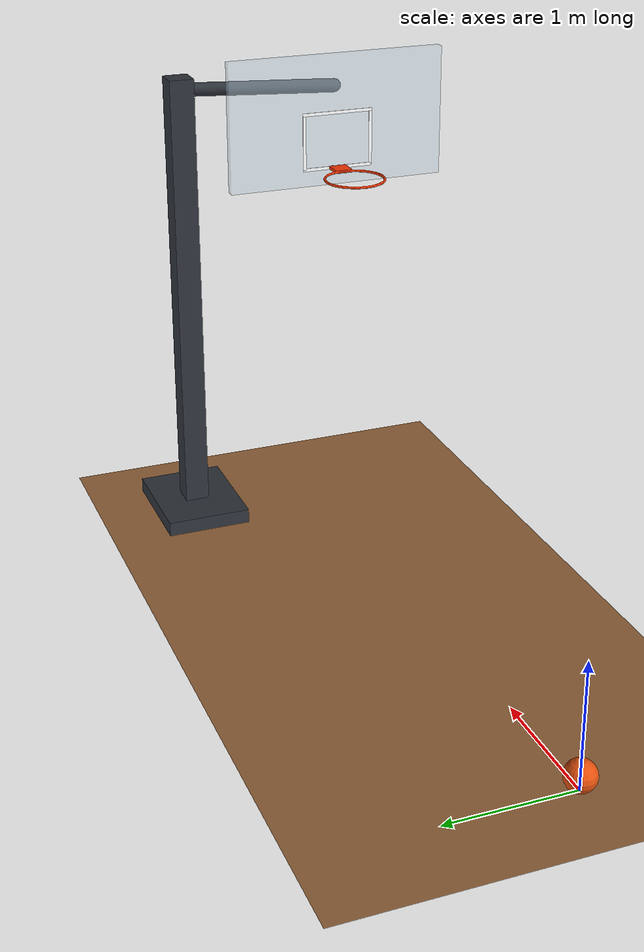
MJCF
<mujoco model="basketball_floor_launch">
  <compiler angle="degree"/>
  <option timestep="0.002" gravity="0 0 -9.81" integrator="Euler" solver="Newton" iterations="50"/>
  <statistic center="2 0 2" extent="6"/>
  <visual>
    <global offwidth="1280" offheight="720"/>
    <headlight ambient="0.3 0.3 0.3" diffuse="0.6 0.6 0.6" specular="0.2 0.2 0.2"/>
  </visual>

  <worldbody>
    <light name="court_light" pos="2 -3 8" dir="0 0 -1" diffuse="0.8 0.8 0.8"/>
    <camera name="overview" pos="2 -9 4.5" xyaxes="1 0 0 0 0.2169 0.9762" fovy="48"/>
    <geom name="floor" type="plane" pos="0 0 0" size="10 8 0.1" rgba="0.58 0.39 0.23 1" friction="0.7 0.005 0.0001"/>

    <!-- Size-7 basketball: 0.754 m circumference, 0.624 kg, hollow-shell inertia. -->
    <body name="ball" pos="0 0 0.12">
      <freejoint name="ball_free"/>
      <inertial pos="0 0 0" mass="0.624" diaginertia="0.0059904 0.0059904 0.0059904"/>
      <geom name="ball" type="sphere" size="0.12" rgba="0.9 0.32 0.055 1" friction="0.7 0.005 0.0001" solref="0.012 0.8" solimp="0.9 0.95 0.001"/>
    </body>

    <!-- Rim center is 4 m from launch and 3.05 m above the floor.
         Tube radius 0.0095 m; nominal inside diameter 0.4572 m. -->
    <body name="hoop" pos="4 0 3.05">
      <geom name="rim_00" type="capsule" fromto="0.238100 0 0 0.233525 0.046451 0" size="0.0095" rgba="1 0.22 0.025 1"/>
      <geom name="rim_01" type="capsule" fromto="0.233525 0.046451 0 0.219976 0.091117 0" size="0.0095" rgba="1 0.22 0.025 1"/>
      <geom name="rim_02" type="capsule" fromto="0.219976 0.091117 0 0.197973 0.132281 0" size="0.0095" rgba="1 0.22 0.025 1"/>
      <geom name="rim_03" type="capsule" fromto="0.197973 0.132281 0 0.168362 0.168362 0" size="0.0095" rgba="1 0.22 0.025 1"/>
      <geom name="rim_04" type="capsule" fromto="0.168362 0.168362 0 0.132281 0.197973 0" size="0.0095" rgba="1 0.22 0.025 1"/>
      <geom name="rim_05" type="capsule" fromto="0.132281 0.197973 0 0.091117 0.219976 0" size="0.0095" rgba="1 0.22 0.025 1"/>
      <geom name="rim_06" type="capsule" fromto="0.091117 0.219976 0 0.046451 0.233525 0" size="0.0095" rgba="1 0.22 0.025 1"/>
      <geom name="rim_07" type="capsule" fromto="0.046451 0.233525 0 0 0.238100 0" size="0.0095" rgba="1 0.22 0.025 1"/>
      <geom name="rim_08" type="capsule" fromto="0 0.238100 0 -0.046451 0.233525 0" size="0.0095" rgba="1 0.22 0.025 1"/>
      <geom name="rim_09" type="capsule" fromto="-0.046451 0.233525 0 -0.091117 0.219976 0" size="0.0095" rgba="1 0.22 0.025 1"/>
      <geom name="rim_10" type="capsule" fromto="-0.091117 0.219976 0 -0.132281 0.197973 0" size="0.0095" rgba="1 0.22 0.025 1"/>
      <geom name="rim_11" type="capsule" fromto="-0.132281 0.197973 0 -0.168362 0.168362 0" size="0.0095" rgba="1 0.22 0.025 1"/>
      <geom name="rim_12" type="capsule" fromto="-0.168362 0.168362 0 -0.197973 0.132281 0" size="0.0095" rgba="1 0.22 0.025 1"/>
      <geom name="rim_13" type="capsule" fromto="-0.197973 0.132281 0 -0.219976 0.091117 0" size="0.0095" rgba="1 0.22 0.025 1"/>
      <geom name="rim_14" type="capsule" fromto="-0.219976 0.091117 0 -0.233525 0.046451 0" size="0.0095" rgba="1 0.22 0.025 1"/>
      <geom name="rim_15" type="capsule" fromto="-0.233525 0.046451 0 -0.238100 0 0" size="0.0095" rgba="1 0.22 0.025 1"/>
      <geom name="rim_16" type="capsule" fromto="-0.238100 0 0 -0.233525 -0.046451 0" size="0.0095" rgba="1 0.22 0.025 1"/>
      <geom name="rim_17" type="capsule" fromto="-0.233525 -0.046451 0 -0.219976 -0.091117 0" size="0.0095" rgba="1 0.22 0.025 1"/>
      <geom name="rim_18" type="capsule" fromto="-0.219976 -0.091117 0 -0.197973 -0.132281 0" size="0.0095" rgba="1 0.22 0.025 1"/>
      <geom name="rim_19" type="capsule" fromto="-0.197973 -0.132281 0 -0.168362 -0.168362 0" size="0.0095" rgba="1 0.22 0.025 1"/>
      <geom name="rim_20" type="capsule" fromto="-0.168362 -0.168362 0 -0.132281 -0.197973 0" size="0.0095" rgba="1 0.22 0.025 1"/>
      <geom name="rim_21" type="capsule" fromto="-0.132281 -0.197973 0 -0.091117 -0.219976 0" size="0.0095" rgba="1 0.22 0.025 1"/>
      <geom name="rim_22" type="capsule" fromto="-0.091117 -0.219976 0 -0.046451 -0.233525 0" size="0.0095" rgba="1 0.22 0.025 1"/>
      <geom name="rim_23" type="capsule" fromto="-0.046451 -0.233525 0 0 -0.238100 0" size="0.0095" rgba="1 0.22 0.025 1"/>
      <geom name="rim_24" type="capsule" fromto="0 -0.238100 0 0.046451 -0.233525 0" size="0.0095" rgba="1 0.22 0.025 1"/>
      <geom name="rim_25" type="capsule" fromto="0.046451 -0.233525 0 0.091117 -0.219976 0" size="0.0095" rgba="1 0.22 0.025 1"/>
      <geom name="rim_26" type="capsule" fromto="0.091117 -0.219976 0 0.132281 -0.197973 0" size="0.0095" rgba="1 0.22 0.025 1"/>
      <geom name="rim_27" type="capsule" fromto="0.132281 -0.197973 0 0.168362 -0.168362 0" size="0.0095" rgba="1 0.22 0.025 1"/>
      <geom name="rim_28" type="capsule" fromto="0.168362 -0.168362 0 0.197973 -0.132281 0" size="0.0095" rgba="1 0.22 0.025 1"/>
      <geom name="rim_29" type="capsule" fromto="0.197973 -0.132281 0 0.219976 -0.091117 0" size="0.0095" rgba="1 0.22 0.025 1"/>
      <geom name="rim_30" type="capsule" fromto="0.219976 -0.091117 0 0.233525 -0.046451 0" size="0.0095" rgba="1 0.22 0.025 1"/>
      <geom name="rim_31" type="capsule" fromto="0.233525 -0.046451 0 0.238100 0 0" size="0.0095" rgba="1 0.22 0.025 1"/>
      <geom name="rim_mount" type="box" pos="0.31 0 0" size="0.08 0.07 0.012" rgba="1 0.22 0.025 1"/>
    </body>

    <!-- Backboard front face is 0.381 m behind the rim center. -->
    <body name="backboard" pos="4.421 0 3.435">
      <geom name="backboard_panel" type="box" size="0.04 0.9 0.525" rgba="0.78 0.87 0.93 0.45"/>
      <geom name="target_bottom" type="box" pos="-0.043 0 -0.385" size="0.003 0.295 0.0125" rgba="1 1 1 1"/>
      <geom name="target_top" type="box" pos="-0.043 0 0.065" size="0.003 0.295 0.0125" rgba="1 1 1 1"/>
      <geom name="target_left" type="box" pos="-0.043 -0.2825 -0.16" size="0.003 0.0125 0.225" rgba="1 1 1 1"/>
      <geom name="target_right" type="box" pos="-0.043 0.2825 -0.16" size="0.003 0.0125 0.225" rgba="1 1 1 1"/>
    </body>

    <!-- Lateral support stays clear of the ball's landing path. -->
    <body name="stand" pos="4.75 1.2 0">
      <geom name="stand_post" type="box" pos="0 0 1.9" size="0.1 0.1 1.9" rgba="0.18 0.2 0.23 1"/>
      <geom name="stand_foot" type="box" pos="0 0 0.06" size="0.45 0.35 0.06" rgba="0.18 0.2 0.23 1"/>
      <geom name="stand_arm" type="capsule" fromto="0 0 3.7 -0.289 -1.2 3.7" size="0.055" rgba="0.18 0.2 0.23 1"/>
    </body>
  </worldbody>

  <!-- Ballistic launch targets the rim center on descent at t = 1.4 s.
       Vertical velocity includes the 0.002 s Euler integration correction. -->
  <keyframe>
    <key name="start" time="0" qpos="0 0 0.12 1 0 0 0" qvel="2.857142857 0 8.968952857 0 0 0"/>
  </keyframe>
</mujoco>
